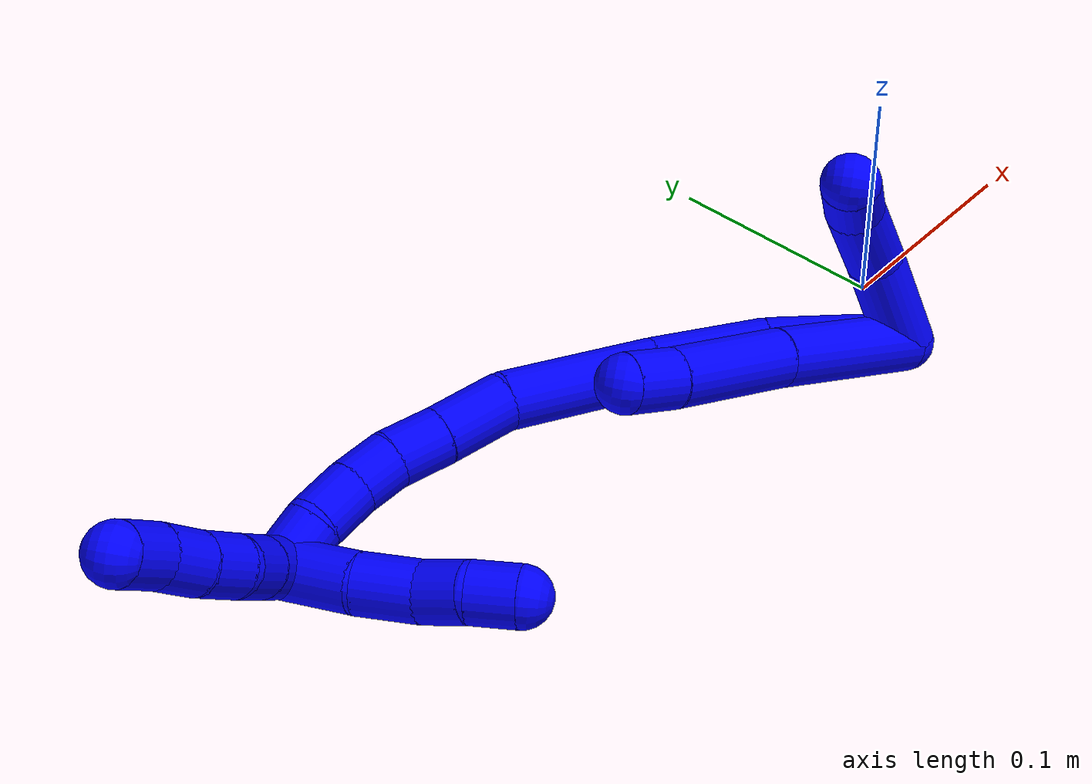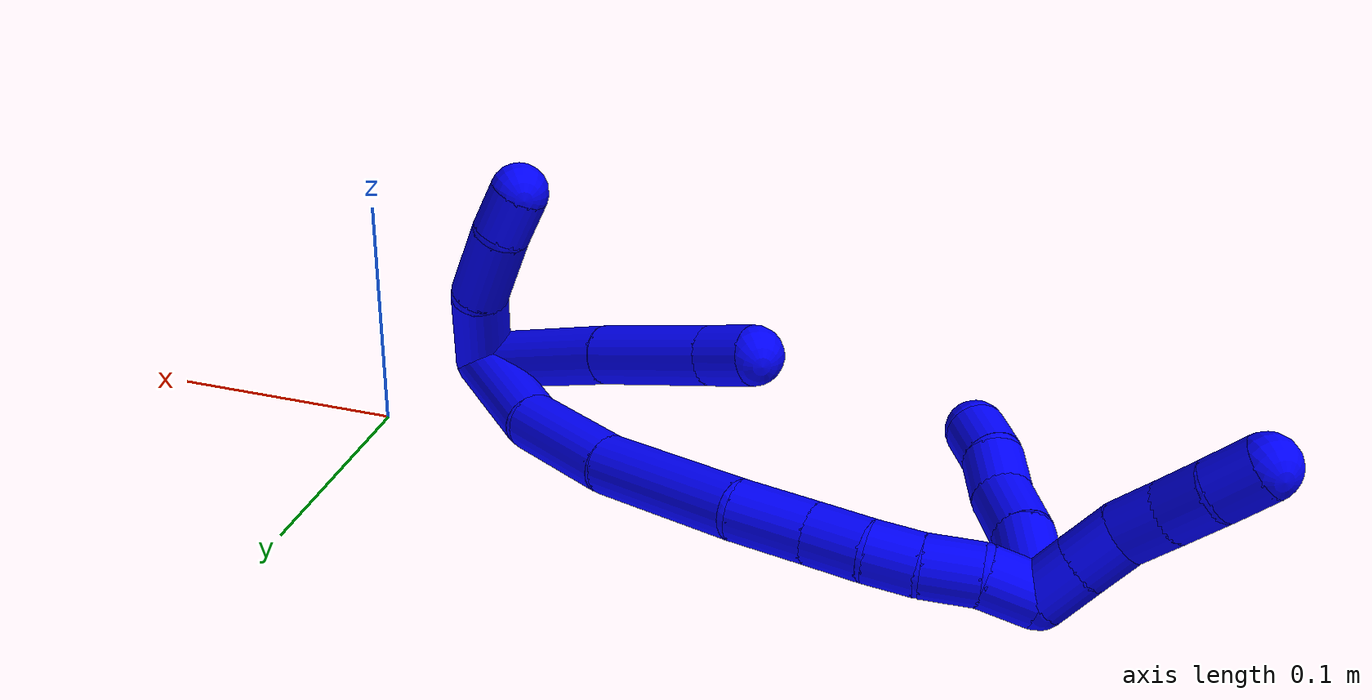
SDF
<sdf version="1.7">
 <world name="default">
  <model name="1">
   <static>0</static>
   <link name="1">
    <collision name="collision-cylinder-e_1_2_8">
     <pose>-0.024396 0.003175 0.026386 -0.119738 -0.742656 0.046672</pose>
     <geometry><cylinder><radius>0.0125</radius><length>0.072152</length></cylinder></geometry>
     <surface>
      <friction><ode><mu>1.16</mu><mu2>1.16</mu2><slip1>0</slip1><slip2>0</slip2></ode></friction>
      <contact><ode><kp>1e+06</kp><kd>1</kd><max_vel>0</max_vel><min_depth>0.001</min_depth></ode></contact>
     </surface>
    </collision>
    <visual name="visual-cylinder-e_1_2_8">
     <pose>-0.024396 0.003175 0.026386 -0.119738 -0.742656 0.046672</pose>
     <geometry><cylinder><radius>0.0125</radius><length>0.072152</length></cylinder></geometry>
     <material><ambient>0 0 1 1</ambient></material>
    </visual>
    <collision name="collision-cylinder-e_2_8_9">
     <pose>-0.067334 0.010185 0.072809 -0.189166 -0.737707 0.073307</pose>
     <geometry><cylinder><radius>0.0125</radius><length>0.055134</length></cylinder></geometry>
     <surface>
      <friction><ode><mu>1.16</mu><mu2>1.16</mu2><slip1>0</slip1><slip2>0</slip2></ode></friction>
      <contact><ode><kp>1e+06</kp><kd>1</kd><max_vel>0</max_vel><min_depth>0.001</min_depth></ode></contact>
     </surface>
    </collision>
    <visual name="visual-cylinder-e_2_8_9">
     <pose>-0.067334 0.010185 0.072809 -0.189166 -0.737707 0.073307</pose>
     <geometry><cylinder><radius>0.0125</radius><length>0.055134</length></cylinder></geometry>
     <material><ambient>0 0 1 1</ambient></material>
    </visual>
    <collision name="collision-cylinder-e_3_9_6">
     <pose>-0.093126 0.015028 0.101528 -0.115406 -0.692446 0.041673</pose>
     <geometry><cylinder><radius>0.0125</radius><length>0.022713</length></cylinder></geometry>
     <surface>
      <friction><ode><mu>1.16</mu><mu2>1.16</mu2><slip1>0</slip1><slip2>0</slip2></ode></friction>
      <contact><ode><kp>1e+06</kp><kd>1</kd><max_vel>0</max_vel><min_depth>0.001</min_depth></ode></contact>
     </surface>
    </collision>
    <visual name="visual-cylinder-e_3_9_6">
     <pose>-0.093126 0.015028 0.101528 -0.115406 -0.692446 0.041673</pose>
     <geometry><cylinder><radius>0.0125</radius><length>0.022713</length></cylinder></geometry>
     <material><ambient>0 0 1 1</ambient></material>
    </visual>
    <collision name="collision-cylinder-e_1_2_10">
     <pose>-0.008819 -0.01773 0.009683 1.07089 -0.411627 -0.246453</pose>
     <geometry><cylinder><radius>0.0125</radius><length>0.044086</length></cylinder></geometry>
     <surface>
      <friction><ode><mu>1.16</mu><mu2>1.16</mu2><slip1>0</slip1><slip2>0</slip2></ode></friction>
      <contact><ode><kp>1e+06</kp><kd>1</kd><max_vel>0</max_vel><min_depth>0.001</min_depth></ode></contact>
     </surface>
    </collision>
    <visual name="visual-cylinder-e_1_2_10">
     <pose>-0.008819 -0.01773 0.009683 1.07089 -0.411627 -0.246453</pose>
     <geometry><cylinder><radius>0.0125</radius><length>0.044086</length></cylinder></geometry>
     <material><ambient>0 0 1 1</ambient></material>
    </visual>
    <collision name="collision-cylinder-e_2_10_11">
     <pose>-0.029536 -0.046875 0.025795 1.05798 -0.737251 -0.44416</pose>
     <geometry><cylinder><radius>0.0125</radius><length>0.035394</length></cylinder></geometry>
     <surface>
      <friction><ode><mu>1.16</mu><mu2>1.16</mu2><slip1>0</slip1><slip2>0</slip2></ode></friction>
      <contact><ode><kp>1e+06</kp><kd>1</kd><max_vel>0</max_vel><min_depth>0.001</min_depth></ode></contact>
     </surface>
    </collision>
    <visual name="visual-cylinder-e_2_10_11">
     <pose>-0.029536 -0.046875 0.025795 1.05798 -0.737251 -0.44416</pose>
     <geometry><cylinder><radius>0.0125</radius><length>0.035394</length></cylinder></geometry>
     <material><ambient>0 0 1 1</ambient></material>
    </visual>
    <collision name="collision-cylinder-e_3_11_5">
     <pose>-0.049597 -0.064209 0.034118 1.26096 -0.920299 -0.694192</pose>
     <geometry><cylinder><radius>0.0125</radius><length>0.02052</length></cylinder></geometry>
     <surface>
      <friction><ode><mu>1.16</mu><mu2>1.16</mu2><slip1>0</slip1><slip2>0</slip2></ode></friction>
      <contact><ode><kp>1e+06</kp><kd>1</kd><max_vel>0</max_vel><min_depth>0.001</min_depth></ode></contact>
     </surface>
    </collision>
    <visual name="visual-cylinder-e_3_11_5">
     <pose>-0.049597 -0.064209 0.034118 1.26096 -0.920299 -0.694192</pose>
     <geometry><cylinder><radius>0.0125</radius><length>0.02052</length></cylinder></geometry>
     <material><ambient>0 0 1 1</ambient></material>
    </visual>
    <collision name="collision-cylinder-e_1_2_12">
     <pose>-0.003685 0.005339 0.028981 -0.182168 -0.124415 0.011378</pose>
     <geometry><cylinder><radius>0.0125</radius><length>0.059396</length></cylinder></geometry>
     <surface>
      <friction><ode><mu>1.16</mu><mu2>1.16</mu2><slip1>0</slip1><slip2>0</slip2></ode></friction>
      <contact><ode><kp>1e+06</kp><kd>1</kd><max_vel>0</max_vel><min_depth>0.001</min_depth></ode></contact>
     </surface>
    </collision>
    <visual name="visual-cylinder-e_1_2_12">
     <pose>-0.003685 0.005339 0.028981 -0.182168 -0.124415 0.011378</pose>
     <geometry><cylinder><radius>0.0125</radius><length>0.059396</length></cylinder></geometry>
     <material><ambient>0 0 1 1</ambient></material>
    </visual>
    <collision name="collision-cylinder-e_2_12_13">
     <pose>-0.016913 0.017133 0.080879 -0.274593 -0.381193 0.053302</pose>
     <geometry><cylinder><radius>0.0125</radius><length>0.051301</length></cylinder></geometry>
     <surface>
      <friction><ode><mu>1.16</mu><mu2>1.16</mu2><slip1>0</slip1><slip2>0</slip2></ode></friction>
      <contact><ode><kp>1e+06</kp><kd>1</kd><max_vel>0</max_vel><min_depth>0.001</min_depth></ode></contact>
     </surface>
    </collision>
    <visual name="visual-cylinder-e_2_12_13">
     <pose>-0.016913 0.017133 0.080879 -0.274593 -0.381193 0.053302</pose>
     <geometry><cylinder><radius>0.0125</radius><length>0.051301</length></cylinder></geometry>
     <material><ambient>0 0 1 1</ambient></material>
    </visual>
    <collision name="collision-cylinder-e_3_13_14">
     <pose>-0.043839 0.032245 0.132289 -0.294946 -0.528388 0.080328</pose>
     <geometry><cylinder><radius>0.0125</radius><length>0.068961</length></cylinder></geometry>
     <surface>
      <friction><ode><mu>1.16</mu><mu2>1.16</mu2><slip1>0</slip1><slip2>0</slip2></ode></friction>
      <contact><ode><kp>1e+06</kp><kd>1</kd><max_vel>0</max_vel><min_depth>0.001</min_depth></ode></contact>
     </surface>
    </collision>
    <visual name="visual-cylinder-e_3_13_14">
     <pose>-0.043839 0.032245 0.132289 -0.294946 -0.528388 0.080328</pose>
     <geometry><cylinder><radius>0.0125</radius><length>0.068961</length></cylinder></geometry>
     <material><ambient>0 0 1 1</ambient></material>
    </visual>
    <collision name="collision-cylinder-e_4_14_15">
     <pose>-0.070843 0.04793 0.171609 -0.57572 -0.64049 0.195771</pose>
     <geometry><cylinder><radius>0.0125</radius><length>0.032199</length></cylinder></geometry>
     <surface>
      <friction><ode><mu>1.16</mu><mu2>1.16</mu2><slip1>0</slip1><slip2>0</slip2></ode></friction>
      <contact><ode><kp>1e+06</kp><kd>1</kd><max_vel>0</max_vel><min_depth>0.001</min_depth></ode></contact>
     </surface>
    </collision>
    <visual name="visual-cylinder-e_4_14_15">
     <pose>-0.070843 0.04793 0.171609 -0.57572 -0.64049 0.195771</pose>
     <geometry><cylinder><radius>0.0125</radius><length>0.032199</length></cylinder></geometry>
     <material><ambient>0 0 1 1</ambient></material>
    </visual>
    <collision name="collision-cylinder-e_5_15_16">
     <pose>-0.087362 0.059731 0.190714 -0.52311 -0.625287 0.172627</pose>
     <geometry><cylinder><radius>0.0125</radius><length>0.02357</length></cylinder></geometry>
     <surface>
      <friction><ode><mu>1.16</mu><mu2>1.16</mu2><slip1>0</slip1><slip2>0</slip2></ode></friction>
      <contact><ode><kp>1e+06</kp><kd>1</kd><max_vel>0</max_vel><min_depth>0.001</min_depth></ode></contact>
     </surface>
    </collision>
    <visual name="visual-cylinder-e_5_15_16">
     <pose>-0.087362 0.059731 0.190714 -0.52311 -0.625287 0.172627</pose>
     <geometry><cylinder><radius>0.0125</radius><length>0.02357</length></cylinder></geometry>
     <material><ambient>0 0 1 1</ambient></material>
    </visual>
    <collision name="collision-cylinder-e_6_16_17">
     <pose>-0.100804 0.069718 0.204714 -0.738882 -0.701756 0.281588</pose>
     <geometry><cylinder><radius>0.0125</radius><length>0.020273</length></cylinder></geometry>
     <surface>
      <friction><ode><mu>1.16</mu><mu2>1.16</mu2><slip1>0</slip1><slip2>0</slip2></ode></friction>
      <contact><ode><kp>1e+06</kp><kd>1</kd><max_vel>0</max_vel><min_depth>0.001</min_depth></ode></contact>
     </surface>
    </collision>
    <visual name="visual-cylinder-e_6_16_17">
     <pose>-0.100804 0.069718 0.204714 -0.738882 -0.701756 0.281588</pose>
     <geometry><cylinder><radius>0.0125</radius><length>0.020273</length></cylinder></geometry>
     <material><ambient>0 0 1 1</ambient></material>
    </visual>
    <collision name="collision-cylinder-e_7_17_18">
     <pose>-0.115697 0.080852 0.215418 -0.871265 -0.823404 0.401026</pose>
     <geometry><cylinder><radius>0.0125</radius><length>0.022765</length></cylinder></geometry>
     <surface>
      <friction><ode><mu>1.16</mu><mu2>1.16</mu2><slip1>0</slip1><slip2>0</slip2></ode></friction>
      <contact><ode><kp>1e+06</kp><kd>1</kd><max_vel>0</max_vel><min_depth>0.001</min_depth></ode></contact>
     </surface>
    </collision>
    <visual name="visual-cylinder-e_7_17_18">
     <pose>-0.115697 0.080852 0.215418 -0.871265 -0.823404 0.401026</pose>
     <geometry><cylinder><radius>0.0125</radius><length>0.022765</length></cylinder></geometry>
     <material><ambient>0 0 1 1</ambient></material>
    </visual>
    <collision name="collision-cylinder-e_8_18_1">
     <pose>-0.130206 0.094566 0.22455 -1.08148 -0.60911 0.373087</pose>
     <geometry><cylinder><radius>0.0125</radius><length>0.021534</length></cylinder></geometry>
     <surface>
      <friction><ode><mu>1.16</mu><mu2>1.16</mu2><slip1>0</slip1><slip2>0</slip2></ode></friction>
      <contact><ode><kp>1e+06</kp><kd>1</kd><max_vel>0</max_vel><min_depth>0.001</min_depth></ode></contact>
     </surface>
    </collision>
    <visual name="visual-cylinder-e_8_18_1">
     <pose>-0.130206 0.094566 0.22455 -1.08148 -0.60911 0.373087</pose>
     <geometry><cylinder><radius>0.0125</radius><length>0.021534</length></cylinder></geometry>
     <material><ambient>0 0 1 1</ambient></material>
    </visual>
    <collision name="collision-cylinder-e_1_1_19">
     <pose>-0.145777 0.099891 0.231011 0.818863 -1.22588 -0.592447</pose>
     <geometry><cylinder><radius>0.0125</radius><length>0.02</length></cylinder></geometry>
     <surface>
      <friction><ode><mu>1.16</mu><mu2>1.16</mu2><slip1>0</slip1><slip2>0</slip2></ode></friction>
      <contact><ode><kp>1e+06</kp><kd>1</kd><max_vel>0</max_vel><min_depth>0.001</min_depth></ode></contact>
     </surface>
    </collision>
    <visual name="visual-cylinder-e_1_1_19">
     <pose>-0.145777 0.099891 0.231011 0.818863 -1.22588 -0.592447</pose>
     <geometry><cylinder><radius>0.0125</radius><length>0.02</length></cylinder></geometry>
     <material><ambient>0 0 1 1</ambient></material>
    </visual>
    <collision name="collision-cylinder-e_2_19_20">
     <pose>-0.164512 0.094875 0.235883 0.782239 -1.20111 -0.550556</pose>
     <geometry><cylinder><radius>0.0125</radius><length>0.02</length></cylinder></geometry>
     <surface>
      <friction><ode><mu>1.16</mu><mu2>1.16</mu2><slip1>0</slip1><slip2>0</slip2></ode></friction>
      <contact><ode><kp>1e+06</kp><kd>1</kd><max_vel>0</max_vel><min_depth>0.001</min_depth></ode></contact>
     </surface>
    </collision>
    <visual name="visual-cylinder-e_2_19_20">
     <pose>-0.164512 0.094875 0.235883 0.782239 -1.20111 -0.550556</pose>
     <geometry><cylinder><radius>0.0125</radius><length>0.02</length></cylinder></geometry>
     <material><ambient>0 0 1 1</ambient></material>
    </visual>
    <collision name="collision-cylinder-e_3_20_21">
     <pose>-0.182176 0.09022 0.243546 0.391886 -0.9862 -0.212524</pose>
     <geometry><cylinder><radius>0.0125</radius><length>0.02</length></cylinder></geometry>
     <surface>
      <friction><ode><mu>1.16</mu><mu2>1.16</mu2><slip1>0</slip1><slip2>0</slip2></ode></friction>
      <contact><ode><kp>1e+06</kp><kd>1</kd><max_vel>0</max_vel><min_depth>0.001</min_depth></ode></contact>
     </surface>
    </collision>
    <visual name="visual-cylinder-e_3_20_21">
     <pose>-0.182176 0.09022 0.243546 0.391886 -0.9862 -0.212524</pose>
     <geometry><cylinder><radius>0.0125</radius><length>0.02</length></cylinder></geometry>
     <material><ambient>0 0 1 1</ambient></material>
    </visual>
    <collision name="collision-cylinder-e_4_21_22">
     <pose>-0.198261 0.085343 0.254332 0.453302 -0.886077 -0.217984</pose>
     <geometry><cylinder><radius>0.0125</radius><length>0.02</length></cylinder></geometry>
     <surface>
      <friction><ode><mu>1.16</mu><mu2>1.16</mu2><slip1>0</slip1><slip2>0</slip2></ode></friction>
      <contact><ode><kp>1e+06</kp><kd>1</kd><max_vel>0</max_vel><min_depth>0.001</min_depth></ode></contact>
     </surface>
    </collision>
    <visual name="visual-cylinder-e_4_21_22">
     <pose>-0.198261 0.085343 0.254332 0.453302 -0.886077 -0.217984</pose>
     <geometry><cylinder><radius>0.0125</radius><length>0.02</length></cylinder></geometry>
     <material><ambient>0 0 1 1</ambient></material>
    </visual>
    <collision name="collision-cylinder-e_5_22_4">
     <pose>-0.214605 0.080499 0.264685 0.418156 -1.03479 -0.240342</pose>
     <geometry><cylinder><radius>0.0125</radius><length>0.02</length></cylinder></geometry>
     <surface>
      <friction><ode><mu>1.16</mu><mu2>1.16</mu2><slip1>0</slip1><slip2>0</slip2></ode></friction>
      <contact><ode><kp>1e+06</kp><kd>1</kd><max_vel>0</max_vel><min_depth>0.001</min_depth></ode></contact>
     </surface>
    </collision>
    <visual name="visual-cylinder-e_5_22_4">
     <pose>-0.214605 0.080499 0.264685 0.418156 -1.03479 -0.240342</pose>
     <geometry><cylinder><radius>0.0125</radius><length>0.02</length></cylinder></geometry>
     <material><ambient>0 0 1 1</ambient></material>
    </visual>
    <collision name="collision-cylinder-e_1_1_23">
     <pose>-0.141452 0.101092 0.212636 3.06279 -0.305726 -2.6406</pose>
     <geometry><cylinder><radius>0.0125</radius><length>0.033798</length></cylinder></geometry>
     <surface>
      <friction><ode><mu>1.16</mu><mu2>1.16</mu2><slip1>0</slip1><slip2>0</slip2></ode></friction>
      <contact><ode><kp>1e+06</kp><kd>1</kd><max_vel>0</max_vel><min_depth>0.001</min_depth></ode></contact>
     </surface>
    </collision>
    <visual name="visual-cylinder-e_1_1_23">
     <pose>-0.141452 0.101092 0.212636 3.06279 -0.305726 -2.6406</pose>
     <geometry><cylinder><radius>0.0125</radius><length>0.033798</length></cylinder></geometry>
     <material><ambient>0 0 1 1</ambient></material>
    </visual>
    <collision name="collision-cylinder-e_2_23_24">
     <pose>-0.148239 0.09869 0.183656 3.05401 -0.130424 -1.95958</pose>
     <geometry><cylinder><radius>0.0125</radius><length>0.02615</length></cylinder></geometry>
     <surface>
      <friction><ode><mu>1.16</mu><mu2>1.16</mu2><slip1>0</slip1><slip2>0</slip2></ode></friction>
      <contact><ode><kp>1e+06</kp><kd>1</kd><max_vel>0</max_vel><min_depth>0.001</min_depth></ode></contact>
     </surface>
    </collision>
    <visual name="visual-cylinder-e_2_23_24">
     <pose>-0.148239 0.09869 0.183656 3.05401 -0.130424 -1.95958</pose>
     <geometry><cylinder><radius>0.0125</radius><length>0.02615</length></cylinder></geometry>
     <material><ambient>0 0 1 1</ambient></material>
    </visual>
    <collision name="collision-cylinder-e_3_24_25">
     <pose>-0.153203 0.0949 0.161654 2.85733 -0.331954 -1.72774</pose>
     <geometry><cylinder><radius>0.0125</radius><length>0.020031</length></cylinder></geometry>
     <surface>
      <friction><ode><mu>1.16</mu><mu2>1.16</mu2><slip1>0</slip1><slip2>0</slip2></ode></friction>
      <contact><ode><kp>1e+06</kp><kd>1</kd><max_vel>0</max_vel><min_depth>0.001</min_depth></ode></contact>
     </surface>
    </collision>
    <visual name="visual-cylinder-e_3_24_25">
     <pose>-0.153203 0.0949 0.161654 2.85733 -0.331954 -1.72774</pose>
     <geometry><cylinder><radius>0.0125</radius><length>0.020031</length></cylinder></geometry>
     <material><ambient>0 0 1 1</ambient></material>
    </visual>
    <collision name="collision-cylinder-e_4_25_3">
     <pose>-0.157401 0.091039 0.142671 3.02036 -0.093459 -1.31302</pose>
     <geometry><cylinder><radius>0.0125</radius><length>0.020022</length></cylinder></geometry>
     <surface>
      <friction><ode><mu>1.16</mu><mu2>1.16</mu2><slip1>0</slip1><slip2>0</slip2></ode></friction>
      <contact><ode><kp>1e+06</kp><kd>1</kd><max_vel>0</max_vel><min_depth>0.001</min_depth></ode></contact>
     </surface>
    </collision>
    <visual name="visual-cylinder-e_4_25_3">
     <pose>-0.157401 0.091039 0.142671 3.02036 -0.093459 -1.31302</pose>
     <geometry><cylinder><radius>0.0125</radius><length>0.020022</length></cylinder></geometry>
     <material><ambient>0 0 1 1</ambient></material>
    </visual>
    <collision name="collision-sphere-3">
     <pose>-0.158336 0.089834 0.132777 0 -0 0</pose>
     <geometry><sphere><radius>0.0125</radius></sphere></geometry>
     <surface>
      <friction><ode><mu>1.16</mu><mu2>1.16</mu2><slip1>0</slip1><slip2>0</slip2></ode></friction>
      <contact><ode><kp>1e+06</kp><kd>1</kd><max_vel>0</max_vel><min_depth>0.001</min_depth></ode></contact>
     </surface>
    </collision>
    <visual name="visual-sphere-3">
     <pose>-0.158336 0.089834 0.132777 0 -0 0</pose>
     <geometry><sphere><radius>0.0125</radius></sphere></geometry>
     <material><ambient>0 0 1 1</ambient></material>
    </visual>
    <collision name="collision-sphere-25">
     <pose>-0.156467 0.092245 0.152565 0 -0 0</pose>
     <geometry><sphere><radius>0.0125</radius></sphere></geometry>
     <surface>
      <friction><ode><mu>1.16</mu><mu2>1.16</mu2><slip1>0</slip1><slip2>0</slip2></ode></friction>
      <contact><ode><kp>1e+06</kp><kd>1</kd><max_vel>0</max_vel><min_depth>0.001</min_depth></ode></contact>
     </surface>
    </collision>
    <visual name="visual-sphere-25">
     <pose>-0.156467 0.092245 0.152565 0 -0 0</pose>
     <geometry><sphere><radius>0.0125</radius></sphere></geometry>
     <material><ambient>0 0 1 1</ambient></material>
    </visual>
    <collision name="collision-sphere-24">
     <pose>-0.149939 0.097556 0.170742 0 -0 0</pose>
     <geometry><sphere><radius>0.0125</radius></sphere></geometry>
     <surface>
      <friction><ode><mu>1.16</mu><mu2>1.16</mu2><slip1>0</slip1><slip2>0</slip2></ode></friction>
      <contact><ode><kp>1e+06</kp><kd>1</kd><max_vel>0</max_vel><min_depth>0.001</min_depth></ode></contact>
     </surface>
    </collision>
    <visual name="visual-sphere-24">
     <pose>-0.149939 0.097556 0.170742 0 -0 0</pose>
     <geometry><sphere><radius>0.0125</radius></sphere></geometry>
     <material><ambient>0 0 1 1</ambient></material>
    </visual>
    <collision name="collision-sphere-23">
     <pose>-0.146538 0.099824 0.196571 0 -0 0</pose>
     <geometry><sphere><radius>0.0125</radius></sphere></geometry>
     <surface>
      <friction><ode><mu>1.16</mu><mu2>1.16</mu2><slip1>0</slip1><slip2>0</slip2></ode></friction>
      <contact><ode><kp>1e+06</kp><kd>1</kd><max_vel>0</max_vel><min_depth>0.001</min_depth></ode></contact>
     </surface>
    </collision>
    <visual name="visual-sphere-23">
     <pose>-0.146538 0.099824 0.196571 0 -0 0</pose>
     <geometry><sphere><radius>0.0125</radius></sphere></geometry>
     <material><ambient>0 0 1 1</ambient></material>
    </visual>
    <collision name="collision-sphere-4">
     <pose>-0.223203 0.078425 0.269352 0 -0 0</pose>
     <geometry><sphere><radius>0.0125</radius></sphere></geometry>
     <surface>
      <friction><ode><mu>1.16</mu><mu2>1.16</mu2><slip1>0</slip1><slip2>0</slip2></ode></friction>
      <contact><ode><kp>1e+06</kp><kd>1</kd><max_vel>0</max_vel><min_depth>0.001</min_depth></ode></contact>
     </surface>
    </collision>
    <visual name="visual-sphere-4">
     <pose>-0.223203 0.078425 0.269352 0 -0 0</pose>
     <geometry><sphere><radius>0.0125</radius></sphere></geometry>
     <material><ambient>0 0 1 1</ambient></material>
    </visual>
    <collision name="collision-sphere-22">
     <pose>-0.206007 0.082573 0.260018 0 -0 0</pose>
     <geometry><sphere><radius>0.0125</radius></sphere></geometry>
     <surface>
      <friction><ode><mu>1.16</mu><mu2>1.16</mu2><slip1>0</slip1><slip2>0</slip2></ode></friction>
      <contact><ode><kp>1e+06</kp><kd>1</kd><max_vel>0</max_vel><min_depth>0.001</min_depth></ode></contact>
     </surface>
    </collision>
    <visual name="visual-sphere-22">
     <pose>-0.206007 0.082573 0.260018 0 -0 0</pose>
     <geometry><sphere><radius>0.0125</radius></sphere></geometry>
     <material><ambient>0 0 1 1</ambient></material>
    </visual>
    <collision name="collision-sphere-21">
     <pose>-0.190515 0.088113 0.248647 0 -0 0</pose>
     <geometry><sphere><radius>0.0125</radius></sphere></geometry>
     <surface>
      <friction><ode><mu>1.16</mu><mu2>1.16</mu2><slip1>0</slip1><slip2>0</slip2></ode></friction>
      <contact><ode><kp>1e+06</kp><kd>1</kd><max_vel>0</max_vel><min_depth>0.001</min_depth></ode></contact>
     </surface>
    </collision>
    <visual name="visual-sphere-21">
     <pose>-0.190515 0.088113 0.248647 0 -0 0</pose>
     <geometry><sphere><radius>0.0125</radius></sphere></geometry>
     <material><ambient>0 0 1 1</ambient></material>
    </visual>
    <collision name="collision-sphere-20">
     <pose>-0.173837 0.092328 0.238446 0 -0 0</pose>
     <geometry><sphere><radius>0.0125</radius></sphere></geometry>
     <surface>
      <friction><ode><mu>1.16</mu><mu2>1.16</mu2><slip1>0</slip1><slip2>0</slip2></ode></friction>
      <contact><ode><kp>1e+06</kp><kd>1</kd><max_vel>0</max_vel><min_depth>0.001</min_depth></ode></contact>
     </surface>
    </collision>
    <visual name="visual-sphere-20">
     <pose>-0.173837 0.092328 0.238446 0 -0 0</pose>
     <geometry><sphere><radius>0.0125</radius></sphere></geometry>
     <material><ambient>0 0 1 1</ambient></material>
    </visual>
    <collision name="collision-sphere-11">
     <pose>-0.041433 -0.058292 0.032223 0 -0 0</pose>
     <geometry><sphere><radius>0.0125</radius></sphere></geometry>
     <surface>
      <friction><ode><mu>1.16</mu><mu2>1.16</mu2><slip1>0</slip1><slip2>0</slip2></ode></friction>
      <contact><ode><kp>1e+06</kp><kd>1</kd><max_vel>0</max_vel><min_depth>0.001</min_depth></ode></contact>
     </surface>
    </collision>
    <visual name="visual-sphere-11">
     <pose>-0.041433 -0.058292 0.032223 0 -0 0</pose>
     <geometry><sphere><radius>0.0125</radius></sphere></geometry>
     <material><ambient>0 0 1 1</ambient></material>
    </visual>
    <collision name="collision-sphere-10">
     <pose>-0.017639 -0.035459 0.019367 0 -0 0</pose>
     <geometry><sphere><radius>0.0125</radius></sphere></geometry>
     <surface>
      <friction><ode><mu>1.16</mu><mu2>1.16</mu2><slip1>0</slip1><slip2>0</slip2></ode></friction>
      <contact><ode><kp>1e+06</kp><kd>1</kd><max_vel>0</max_vel><min_depth>0.001</min_depth></ode></contact>
     </surface>
    </collision>
    <visual name="visual-sphere-10">
     <pose>-0.017639 -0.035459 0.019367 0 -0 0</pose>
     <geometry><sphere><radius>0.0125</radius></sphere></geometry>
     <material><ambient>0 0 1 1</ambient></material>
    </visual>
    <collision name="collision-sphere-6">
     <pose>-0.100376 0.016034 0.11021 0 -0 0</pose>
     <geometry><sphere><radius>0.0125</radius></sphere></geometry>
     <surface>
      <friction><ode><mu>1.16</mu><mu2>1.16</mu2><slip1>0</slip1><slip2>0</slip2></ode></friction>
      <contact><ode><kp>1e+06</kp><kd>1</kd><max_vel>0</max_vel><min_depth>0.001</min_depth></ode></contact>
     </surface>
    </collision>
    <visual name="visual-sphere-6">
     <pose>-0.100376 0.016034 0.11021 0 -0 0</pose>
     <geometry><sphere><radius>0.0125</radius></sphere></geometry>
     <material><ambient>0 0 1 1</ambient></material>
    </visual>
    <collision name="collision-sphere-9">
     <pose>-0.085876 0.014021 0.092845 0 -0 0</pose>
     <geometry><sphere><radius>0.0125</radius></sphere></geometry>
     <surface>
      <friction><ode><mu>1.16</mu><mu2>1.16</mu2><slip1>0</slip1><slip2>0</slip2></ode></friction>
      <contact><ode><kp>1e+06</kp><kd>1</kd><max_vel>0</max_vel><min_depth>0.001</min_depth></ode></contact>
     </surface>
    </collision>
    <visual name="visual-sphere-9">
     <pose>-0.085876 0.014021 0.092845 0 -0 0</pose>
     <geometry><sphere><radius>0.0125</radius></sphere></geometry>
     <material><ambient>0 0 1 1</ambient></material>
    </visual>
    <collision name="collision-sphere-2">
     <geometry><sphere><radius>0.0125</radius></sphere></geometry>
     <surface>
      <friction><ode><mu>1.16</mu><mu2>1.16</mu2><slip1>0</slip1><slip2>0</slip2></ode></friction>
      <contact><ode><kp>1e+06</kp><kd>1</kd><max_vel>0</max_vel><min_depth>0.001</min_depth></ode></contact>
     </surface>
    </collision>
    <visual name="visual-sphere-2">
     <geometry><sphere><radius>0.0125</radius></sphere></geometry>
     <material><ambient>0 0 1 1</ambient></material>
    </visual>
    <collision name="collision-sphere-19">
     <pose>-0.155188 0.097422 0.23332 0 -0 0</pose>
     <geometry><sphere><radius>0.0125</radius></sphere></geometry>
     <surface>
      <friction><ode><mu>1.16</mu><mu2>1.16</mu2><slip1>0</slip1><slip2>0</slip2></ode></friction>
      <contact><ode><kp>1e+06</kp><kd>1</kd><max_vel>0</max_vel><min_depth>0.001</min_depth></ode></contact>
     </surface>
    </collision>
    <visual name="visual-sphere-19">
     <pose>-0.155188 0.097422 0.23332 0 -0 0</pose>
     <geometry><sphere><radius>0.0125</radius></sphere></geometry>
     <material><ambient>0 0 1 1</ambient></material>
    </visual>
    <collision name="collision-sphere-8">
     <pose>-0.048793 0.006349 0.052772 0 -0 0</pose>
     <geometry><sphere><radius>0.0125</radius></sphere></geometry>
     <surface>
      <friction><ode><mu>1.16</mu><mu2>1.16</mu2><slip1>0</slip1><slip2>0</slip2></ode></friction>
      <contact><ode><kp>1e+06</kp><kd>1</kd><max_vel>0</max_vel><min_depth>0.001</min_depth></ode></contact>
     </surface>
    </collision>
    <visual name="visual-sphere-8">
     <pose>-0.048793 0.006349 0.052772 0 -0 0</pose>
     <geometry><sphere><radius>0.0125</radius></sphere></geometry>
     <material><ambient>0 0 1 1</ambient></material>
    </visual>
    <collision name="collision-sphere-5">
     <pose>-0.057762 -0.070126 0.036012 0 -0 0</pose>
     <geometry><sphere><radius>0.0125</radius></sphere></geometry>
     <surface>
      <friction><ode><mu>1.16</mu><mu2>1.16</mu2><slip1>0</slip1><slip2>0</slip2></ode></friction>
      <contact><ode><kp>1e+06</kp><kd>1</kd><max_vel>0</max_vel><min_depth>0.001</min_depth></ode></contact>
     </surface>
    </collision>
    <visual name="visual-sphere-5">
     <pose>-0.057762 -0.070126 0.036012 0 -0 0</pose>
     <geometry><sphere><radius>0.0125</radius></sphere></geometry>
     <material><ambient>0 0 1 1</ambient></material>
    </visual>
    <collision name="collision-sphere-12">
     <pose>-0.007371 0.010677 0.057962 0 -0 0</pose>
     <geometry><sphere><radius>0.0125</radius></sphere></geometry>
     <surface>
      <friction><ode><mu>1.16</mu><mu2>1.16</mu2><slip1>0</slip1><slip2>0</slip2></ode></friction>
      <contact><ode><kp>1e+06</kp><kd>1</kd><max_vel>0</max_vel><min_depth>0.001</min_depth></ode></contact>
     </surface>
    </collision>
    <visual name="visual-sphere-12">
     <pose>-0.007371 0.010677 0.057962 0 -0 0</pose>
     <geometry><sphere><radius>0.0125</radius></sphere></geometry>
     <material><ambient>0 0 1 1</ambient></material>
    </visual>
    <collision name="collision-sphere-13">
     <pose>-0.026456 0.023589 0.103797 0 -0 0</pose>
     <geometry><sphere><radius>0.0125</radius></sphere></geometry>
     <surface>
      <friction><ode><mu>1.16</mu><mu2>1.16</mu2><slip1>0</slip1><slip2>0</slip2></ode></friction>
      <contact><ode><kp>1e+06</kp><kd>1</kd><max_vel>0</max_vel><min_depth>0.001</min_depth></ode></contact>
     </surface>
    </collision>
    <visual name="visual-sphere-13">
     <pose>-0.026456 0.023589 0.103797 0 -0 0</pose>
     <geometry><sphere><radius>0.0125</radius></sphere></geometry>
     <material><ambient>0 0 1 1</ambient></material>
    </visual>
    <collision name="collision-sphere-14">
     <pose>-0.061222 0.040902 0.160781 0 -0 0</pose>
     <geometry><sphere><radius>0.0125</radius></sphere></geometry>
     <surface>
      <friction><ode><mu>1.16</mu><mu2>1.16</mu2><slip1>0</slip1><slip2>0</slip2></ode></friction>
      <contact><ode><kp>1e+06</kp><kd>1</kd><max_vel>0</max_vel><min_depth>0.001</min_depth></ode></contact>
     </surface>
    </collision>
    <visual name="visual-sphere-14">
     <pose>-0.061222 0.040902 0.160781 0 -0 0</pose>
     <geometry><sphere><radius>0.0125</radius></sphere></geometry>
     <material><ambient>0 0 1 1</ambient></material>
    </visual>
    <collision name="collision-sphere-15">
     <pose>-0.080464 0.054958 0.182437 0 -0 0</pose>
     <geometry><sphere><radius>0.0125</radius></sphere></geometry>
     <surface>
      <friction><ode><mu>1.16</mu><mu2>1.16</mu2><slip1>0</slip1><slip2>0</slip2></ode></friction>
      <contact><ode><kp>1e+06</kp><kd>1</kd><max_vel>0</max_vel><min_depth>0.001</min_depth></ode></contact>
     </surface>
    </collision>
    <visual name="visual-sphere-15">
     <pose>-0.080464 0.054958 0.182437 0 -0 0</pose>
     <geometry><sphere><radius>0.0125</radius></sphere></geometry>
     <material><ambient>0 0 1 1</ambient></material>
    </visual>
    <collision name="collision-sphere-16">
     <pose>-0.09426 0.064505 0.198991 0 -0 0</pose>
     <geometry><sphere><radius>0.0125</radius></sphere></geometry>
     <surface>
      <friction><ode><mu>1.16</mu><mu2>1.16</mu2><slip1>0</slip1><slip2>0</slip2></ode></friction>
      <contact><ode><kp>1e+06</kp><kd>1</kd><max_vel>0</max_vel><min_depth>0.001</min_depth></ode></contact>
     </surface>
    </collision>
    <visual name="visual-sphere-16">
     <pose>-0.09426 0.064505 0.198991 0 -0 0</pose>
     <geometry><sphere><radius>0.0125</radius></sphere></geometry>
     <material><ambient>0 0 1 1</ambient></material>
    </visual>
    <collision name="collision-sphere-17">
     <pose>-0.107348 0.074932 0.210437 0 -0 0</pose>
     <geometry><sphere><radius>0.0125</radius></sphere></geometry>
     <surface>
      <friction><ode><mu>1.16</mu><mu2>1.16</mu2><slip1>0</slip1><slip2>0</slip2></ode></friction>
      <contact><ode><kp>1e+06</kp><kd>1</kd><max_vel>0</max_vel><min_depth>0.001</min_depth></ode></contact>
     </surface>
    </collision>
    <visual name="visual-sphere-17">
     <pose>-0.107348 0.074932 0.210437 0 -0 0</pose>
     <geometry><sphere><radius>0.0125</radius></sphere></geometry>
     <material><ambient>0 0 1 1</ambient></material>
    </visual>
    <collision name="collision-sphere-18">
     <pose>-0.124045 0.086772 0.2204 0 -0 0</pose>
     <geometry><sphere><radius>0.0125</radius></sphere></geometry>
     <surface>
      <friction><ode><mu>1.16</mu><mu2>1.16</mu2><slip1>0</slip1><slip2>0</slip2></ode></friction>
      <contact><ode><kp>1e+06</kp><kd>1</kd><max_vel>0</max_vel><min_depth>0.001</min_depth></ode></contact>
     </surface>
    </collision>
    <visual name="visual-sphere-18">
     <pose>-0.124045 0.086772 0.2204 0 -0 0</pose>
     <geometry><sphere><radius>0.0125</radius></sphere></geometry>
     <material><ambient>0 0 1 1</ambient></material>
    </visual>
    <collision name="collision-sphere-1">
     <pose>-0.136366 0.102361 0.228701 0 -0 0</pose>
     <geometry><sphere><radius>0.0125</radius></sphere></geometry>
     <surface>
      <friction><ode><mu>1.16</mu><mu2>1.16</mu2><slip1>0</slip1><slip2>0</slip2></ode></friction>
      <contact><ode><kp>1e+06</kp><kd>1</kd><max_vel>0</max_vel><min_depth>0.001</min_depth></ode></contact>
     </surface>
    </collision>
    <visual name="visual-sphere-1">
     <pose>-0.136366 0.102361 0.228701 0 -0 0</pose>
     <geometry><sphere><radius>0.0125</radius></sphere></geometry>
     <material><ambient>0 0 1 1</ambient></material>
    </visual>
    <inertial>
     <pose>-0.078607 0.03703 0.122454 0 -0 0</pose>
     <mass>0.75</mass>
     <inertia><ixx>7.9e-05</ixx><ixy>0</ixy><ixz>0</ixz><iyy>0.000139</iyy><iyz>0</iyz><izz>9.5e-05</izz></inertia>
    </inertial>
   </link>
   <pose>-0.028436 -0.041841 0.011797 -1.47475 0.532017 0.602434</pose>
  </model>
 </world>
</sdf>
